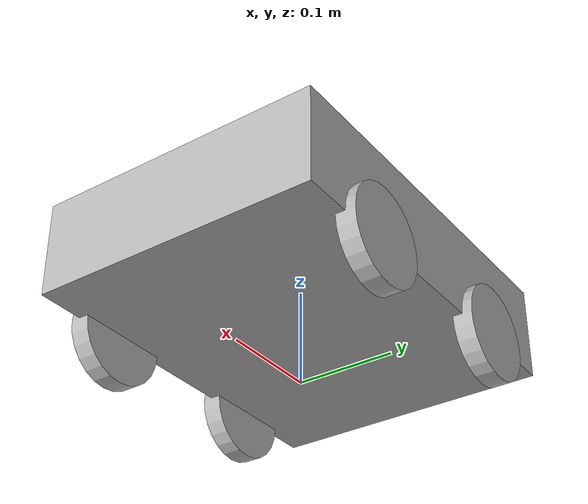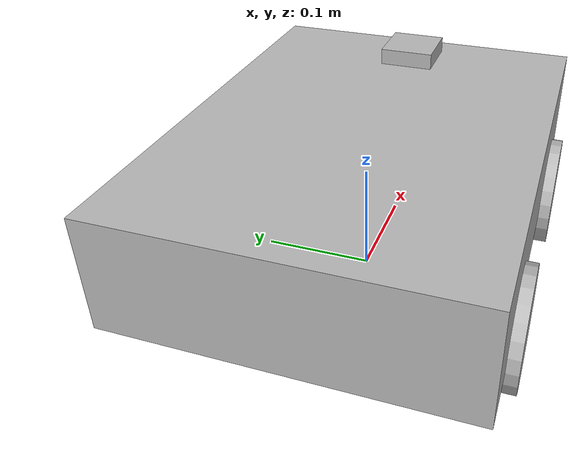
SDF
<?xml version="1.0" ?>
<sdf version='1.11'>
  <model name='mobile_robot'>
    <pose>0.0 0.0 0.0 0.0 0.0 0.0</pose>
    <static>false</static>
    <link name='base_link'>
      <inertial>
        <pose>0.0029411764705882361 0 0.1009803921568628 0 0 0</pose>
        <mass>5.0999999999999996</mass>
        <inertia>
          <ixx>0.10034509803921569</ixx>
          <ixy>0</ixy>
          <ixz>-0.00073529411764705838</ixz>
          <iyy>0.1025509803921569</iyy>
          <iyz>0</iyz>
          <izz>0.1023058823529412</izz>
        </inertia>
      </inertial>
      <collision name='base_link_collision'>
        <pose>0 0 0.10000000000000001 0 0 0</pose>
        <geometry>
          <box>
            <size>0.40000000000000002 0.29999999999999999 0.10000000000000001</size>
          </box>
        </geometry>
      </collision>
      <collision name='base_link_fixed_joint_lump__camera_link_collision_1'>
        <pose>0.14999999999999999 0 0.14999999999999999 0 0 0</pose>
        <geometry>
          <box>
            <size>0.050000000000000003 0.050000000000000003 0.029999999999999999</size>
          </box>
        </geometry>
      </collision>
      <visual name='base_link_visual'>
        <pose>0 0 0.10000000000000001 0 0 0</pose>
        <geometry>
          <box>
            <size>0.40000000000000002 0.29999999999999999 0.10000000000000001</size>
          </box>
        </geometry>
      </visual>
      <visual name='base_link_fixed_joint_lump__camera_link_visual_1'>
        <pose>0.14999999999999999 0 0.14999999999999999 0 0 0</pose>
        <geometry>
          <box>
            <size>0.050000000000000003 0.050000000000000003 0.029999999999999999</size>
          </box>
        </geometry>
      </visual>
    </link>
    <joint name='left_wheel_joint' type='revolute'>
      <pose relative_to='base_link'>0.1 -0.14999999999999999 0.050000000000000003 0 0 0</pose>
      <parent>base_link</parent>
      <child>left_wheel</child>
      <axis>
        <xyz>0 1 0</xyz>
        <limit>
          <lower>-inf</lower>
          <upper>inf</upper>
        </limit>
        <dynamics>
          <spring_reference>0</spring_reference>
          <spring_stiffness>0</spring_stiffness>
        </dynamics>
      </axis>
    </joint>
    <link name='left_wheel'>
      <pose relative_to='left_wheel_joint'>0 0 0 0 0 0</pose>
      <inertial>
        <pose>0 0 0 0 0 0</pose>
        <mass>0.5</mass>
        <inertia>
          <ixx>0.001</ixx>
          <ixy>0</ixy>
          <ixz>0</ixz>
          <iyy>0.001</iyy>
          <iyz>0</iyz>
          <izz>0.001</izz>
        </inertia>
      </inertial>
      <collision name='left_wheel_collision'>
        <pose>0 0 0 1.5708 0 0</pose>
        <geometry>
          <cylinder>
            <length>0.02</length>
            <radius>0.050000000000000003</radius>
          </cylinder>
        </geometry>
        <surface>
          <friction>
            <ode>
              <mu>0.8</mu>
              <mu2>0.8</mu2>
            </ode>
          </friction>
        </surface>
      </collision>
      <visual name='left_wheel_visual'>
        <pose>0 0 0 1.5708 0 0</pose>
        <geometry>
          <cylinder>
            <length>0.02</length>
            <radius>0.050000000000000003</radius>
          </cylinder>
        </geometry>
      </visual>
    </link>
    <joint name='right_wheel_joint' type='revolute'>
      <pose relative_to='base_link'>0.1 0.14999999999999999 0.050000000000000003 0 0 0</pose>
      <parent>base_link</parent>
      <child>right_wheel</child>
      <axis>
        <xyz>0 1 0</xyz>
        <limit>
          <lower>-inf</lower>
          <upper>inf</upper>
        </limit>
        <dynamics>
          <spring_reference>0</spring_reference>
          <spring_stiffness>0</spring_stiffness>
        </dynamics>
      </axis>
    </joint>
    <link name='right_wheel'>
      <pose relative_to='right_wheel_joint'>0 0 0 0 0 0</pose>
      <inertial>
        <pose>0 0 0 0 0 0</pose>
        <mass>0.5</mass>
        <inertia>
          <ixx>0.001</ixx>
          <ixy>0</ixy>
          <ixz>0</ixz>
          <iyy>0.001</iyy>
          <iyz>0</iyz>
          <izz>0.001</izz>
        </inertia>
      </inertial>
      <collision name='right_wheel_collision'>
        <pose>0 0 0 1.5708 0 0</pose>
        <geometry>
          <cylinder>
            <length>0.02</length>
            <radius>0.050000000000000003</radius>
          </cylinder>
        </geometry>
        <surface>
          <friction>
            <ode>
              <mu>0.8</mu>
              <mu2>0.8</mu2>
            </ode>
          </friction>
        </surface>
      </collision>
      <visual name='right_wheel_visual'>
        <pose>0 0 0 1.5708 0 0</pose>
        <geometry>
          <cylinder>
            <length>0.02</length>
            <radius>0.050000000000000003</radius>
          </cylinder>
        </geometry>
      </visual>
    </link>

    <joint name='rear_left_wheel_joint' type='revolute'>
      <pose relative_to='base_link'>-0.1 -0.14999999999999999 0.050000000000000003 0 0 0</pose>
      <parent>base_link</parent>
      <child>rear_left_wheel</child>
      <axis>
        <xyz>0 1 0</xyz>
        <limit>
          <lower>-inf</lower>
          <upper>inf</upper>
        </limit>
        <dynamics>
          <spring_reference>0</spring_reference>
          <spring_stiffness>0</spring_stiffness>
        </dynamics>
      </axis>
    </joint>
    <link name='rear_left_wheel'>
      <pose relative_to='rear_left_wheel_joint'>0 0 0 0 0 0</pose>
      <inertial>
        <pose>0 0 0 0 0 0</pose>
        <mass>0.5</mass>
        <inertia>
          <ixx>0.001</ixx>
          <ixy>0</ixy>
          <ixz>0</ixz>
          <iyy>0.001</iyy>
          <iyz>0</iyz>
          <izz>0.001</izz>
        </inertia>
      </inertial>
      <collision name='rear_left_wheel_collision'>
        <pose>0 0 0 1.5708 0 0</pose>
        <geometry>
          <cylinder>
            <length>0.02</length>
            <radius>0.050000000000000003</radius>
          </cylinder>
        </geometry>
        <surface>
          <friction>
            <ode>
              <mu>0.8</mu>
              <mu2>0.8</mu2>
            </ode>
          </friction>
        </surface>
      </collision>
      <visual name='rear_left_wheel_visual'>
        <pose>0 0 0 1.5708 0 0</pose>
        <geometry>
          <cylinder>
            <length>0.02</length>
            <radius>0.050000000000000003</radius>
          </cylinder>
        </geometry>
      </visual>
    </link>

    <joint name='rear_right_wheel_joint' type='revolute'>
      <pose relative_to='base_link'>-0.1 0.14999999999999999 0.050000000000000003 0 0 0</pose>
      <parent>base_link</parent>
      <child>rear_right_wheel</child>
      <axis>
        <xyz>0 1 0</xyz>
        <limit>
          <lower>-inf</lower>
          <upper>inf</upper>
        </limit>
        <dynamics>
          <spring_reference>0</spring_reference>
          <spring_stiffness>0</spring_stiffness>
        </dynamics>
      </axis>
    </joint>
    <link name='rear_right_wheel'>
      <pose relative_to='rear_right_wheel_joint'>0 0 0 0 0 0</pose>
      <inertial>
        <pose>0 0 0 0 0 0</pose>
        <mass>0.5</mass>
        <inertia>
          <ixx>0.001</ixx>
          <ixy>0</ixy>
          <ixz>0</ixz>
          <iyy>0.001</iyy>
          <iyz>0</iyz>
          <izz>0.001</izz>
        </inertia>
      </inertial>
      <collision name='rear_right_wheel_collision'>
        <pose>0 0 0 1.5708 0 0</pose>
        <geometry>
          <cylinder>
            <length>0.02</length>
            <radius>0.050000000000000003</radius>
          </cylinder>
        </geometry>
        <surface>
          <friction>
            <ode>
              <mu>0.8</mu>
              <mu2>0.8</mu2>
            </ode>
          </friction>
        </surface>
      </collision>
      <visual name='rear_right_wheel_visual'>
        <pose>0 0 0 1.5708 0 0</pose>
        <geometry>
          <cylinder>
            <length>0.02</length>
            <radius>0.050000000000000003</radius>
          </cylinder>
        </geometry>
      </visual>
    </link>

    <plugin name='gz::sim::systems::DiffDrive' filename='libgz-sim8-diff-drive-system.so'>
      <left_joint>left_wheel_joint</left_joint>
      <left_joint>rear_left_wheel_joint</left_joint>
      <right_joint>right_wheel_joint</right_joint>
      <right_joint>rear_right_wheel_joint</right_joint>

      <wheel_separation>0.40</wheel_separation>
      <wheel_radius>0.05</wheel_radius>

      <odom_topic>/odom</odom_topic>
      <odometry_frame>odom</odometry_frame>

      <publish_odom>true</publish_odom>
      <publish_tf>false</publish_tf>

      <robot_base_frame>base_link</robot_base_frame>
      <topic>cmd_vel</topic>

      <use_model_frame>true</use_model_frame>

    </plugin>

    <joint name="camera_joint" type="fixed">
      <pose relative_to="base_link">0.15 0 0.15 0 0 0</pose>
      <parent>base_link</parent>
      <child>camera_link</child>
    </joint>

    <link name="camera_link">
      <pose relative_to="camera_joint">0 0 0 0 0 0</pose>

      <inertial>
        <mass>0.1</mass>
        <inertia>
          <ixx>0.001</ixx>
          <iyy>0.001</iyy>
          <izz>0.001</izz>
        </inertia>
      </inertial>
      <sensor name="camera_sensor" type="camera">
        <camera>
          <horizontal_fov>1.57</horizontal_fov>
          <image>
            <width>640</width>
            <height>480</height>
            <format>R8G8B8</format>
          </image>
          <clip>
            <near>0.1</near>
            <far>100</far>
          </clip>
        </camera>
        <always_on>true</always_on>
        <update_rate>30</update_rate>
        <visualize>true</visualize>
        <topic>camera/image_raw</topic>
      </sensor>
    </link>

    <joint name="lidar_joint" type="fixed">
      <pose relative_to="base_link">0 0 0.18 0 0 0</pose>
      <parent>base_link</parent>
      <child>lidar_link</child>
    </joint>

    <link name="lidar_link">
      <pose relative_to="lidar_joint">0 0 0 0 0 0</pose>

      <inertial>
        <mass>0.1</mass>
        <inertia>
          <ixx>0.001</ixx>
          <iyy>0.001</iyy>
          <izz>0.001</izz>
        </inertia>
      </inertial>
      <sensor name="lidar_sensor" type="gpu_lidar">
        <always_on>true</always_on>
        <update_rate>20</update_rate>
        <visualize>true</visualize>
        <topic>scan</topic>
        <gz_frame_id>lidar_link</gz_frame_id>

        <lidar>
          <scan>
            <horizontal>
              <samples>360</samples>
              <resolution>1</resolution>
              <min_angle>-3.14159</min_angle>
              <max_angle>3.14159</max_angle>
            </horizontal>
          </scan>
          <range>
            <min>0.12</min>
            <max>10.0</max>
            <resolution>0.01</resolution>
          </range>

          <noise>
            <type>gaussian</type>
            <mean>0.0</mean>
            <stddev>0.01</stddev>
          </noise>
        </lidar>
      </sensor>
    </link>

    <plugin filename="libgz-sim8-sensors-system.so" name="gz::sim::systems::Sensors"/>
  </model>
</sdf>
